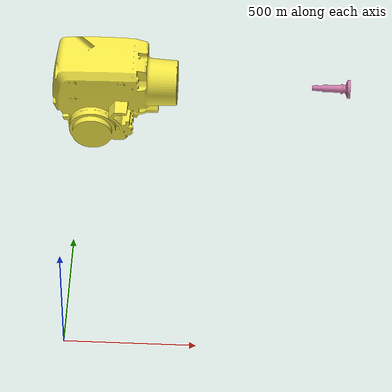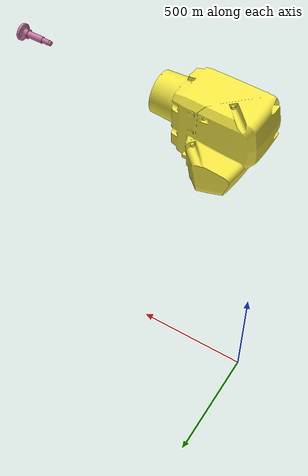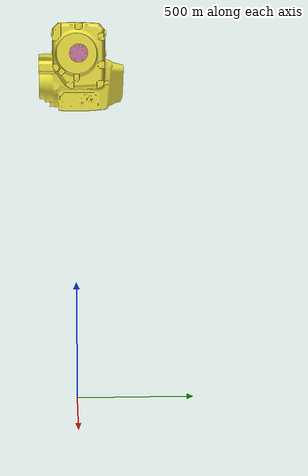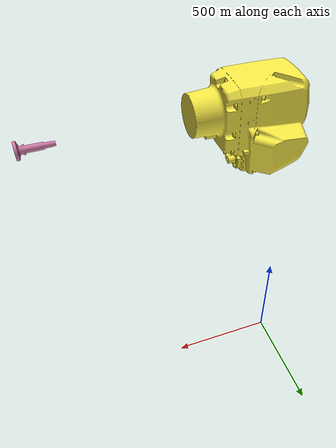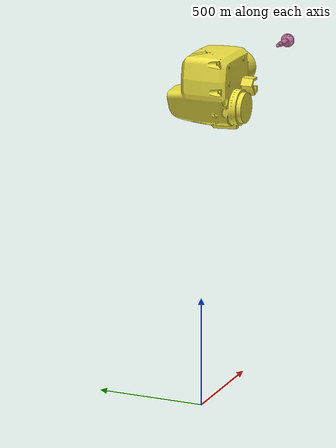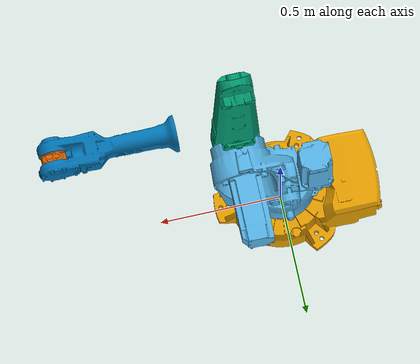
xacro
<?xml version="1.0" ?>
<robot name="abb_irb2600_12_185" xmlns:xacro="http://ros.org/wiki/xacro">
  <xacro:arg name="use_fake_hardware" default="true"/>
  <xacro:property name="use_fake_hardware" value="$(arg use_fake_hardware)"/>
  <xacro:arg name="rws_ip" default="None"/>
  <xacro:property name="rws_ip" value="$(arg rws_ip)"/>
  <xacro:arg name="rws_port" default="80"/>
  <xacro:property name="rws_port" value="$(arg rws_port)"/>
  <!-- Robot description -->
  <xacro:include filename="$(find abb_irb2600_support)/urdf/irb2600_12_185_macro.xacro"/>
  <xacro:abb_irb2600_12_185 prefix=""/>

  <!-- ros2_control -->
  <xacro:include filename="$(find abb_irb2600_support)/urdf/irb2600.ros2_control.xacro" />
  <xacro:abb_ros2_control
    name="ABBMultiInterfaceHardware"
    prefix=""
    use_fake_hardware="${use_fake_hardware}"
    rws_ip="${rws_ip}"
    rws_port="${rws_port}"/>
</robot>

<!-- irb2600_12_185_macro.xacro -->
<robot xmlns:xacro="http://ros.org/wiki/xacro">
  <xacro:include filename="$(find abb_resources)/urdf/common_materials.xacro"/>

  <xacro:macro name="abb_irb2600_12_185" params="prefix">
    <!-- link list -->
    <link name="${prefix}base_link">
      <collision name="collision">
        <geometry>
          <mesh filename="package://abb_irb2600_support/meshes/irb2600_12_185/collision/base_link.stl"/>
        </geometry>
      </collision>
      <visual name="visual">
        <geometry>
          <mesh filename="package://abb_irb2600_support/meshes/irb2600_12_185/visual/base_link.stl"/>
        </geometry>
        <xacro:material_abb_yellow />
      </visual>
    </link>
    <link name="${prefix}link_1">
      <collision name="collision">
        <geometry>
          <mesh filename="package://abb_irb2600_support/meshes/irb2600_12_185/collision/link_1.stl"/>
        </geometry>
      </collision>
      <visual name="visual">
        <geometry>
          <mesh filename="package://abb_irb2600_support/meshes/irb2600_12_185/visual/link_1.stl"/>
        </geometry>
        <xacro:material_abb_yellow />
      </visual>
    </link>
    <link name="${prefix}link_2">
      <collision name="collision">
      	<origin xyz="-0.15 0 -0.445"/>
        <geometry>
          <mesh filename="package://abb_irb2600_support/meshes/irb2600_12_185/collision/link_2.stl"/>
        </geometry>
      </collision>
      <visual name="visual">
      	<origin xyz="-0.15 0 -0.445"/>
        <geometry>
          <mesh filename="package://abb_irb2600_support/meshes/irb2600_12_185/visual/link_2.stl"/>
        </geometry>
        <xacro:material_abb_yellow />
      </visual>
    </link>
    <link name="${prefix}link_3">
      <collision name="collision">
        <geometry>
          <mesh filename="package://abb_irb2600_support/meshes/irb2600_12_185/collision/link_3.stl"/>
        </geometry>
      </collision>
      <visual name="visual">
        <geometry>
          <mesh filename="package://abb_irb2600_support/meshes/irb2600_12_185/visual/link_3.stl"/>
        </geometry>
        <xacro:material_abb_yellow />
      </visual>
    </link>
    <link name="${prefix}link_4">
      <collision name="collision">
        <geometry>
          <mesh filename="package://abb_irb2600_support/meshes/irb2600_12_185/collision/link_4.stl"/>
        </geometry>
      </collision>
      <visual name="visual">
        <geometry>
          <mesh filename="package://abb_irb2600_support/meshes/irb2600_12_185/visual/link_4.stl"/>
        </geometry>
        <xacro:material_abb_yellow />
      </visual>
    </link>
    <link name="${prefix}link_5">
      <collision name="collision">
        <geometry>
          <mesh filename="package://abb_irb2600_support/meshes/irb2600_12_185/collision/link_5.stl"/>
        </geometry>
      </collision>
      <visual name="visual">
        <geometry>
          <mesh filename="package://abb_irb2600_support/meshes/irb2600_12_185/visual/link_5.stl"/>
        </geometry>
        <xacro:material_abb_yellow />
      </visual>
    </link>
    <link name="${prefix}link_6">
      <collision name="collision">
        <geometry>
          <mesh filename="package://abb_irb2600_support/meshes/irb2600_12_185/collision/link_6.stl"/>
        </geometry>
      </collision>
      <visual name="visual">
        <geometry>
          <mesh filename="package://abb_irb2600_support/meshes/irb2600_12_185/visual/link_6.stl"/>
        </geometry>
        <xacro:material_abb_yellow />
      </visual>
    </link>
    <!-- end of link list -->

    <!-- joint list -->
    <joint type="revolute" name="${prefix}joint_1">
      <origin xyz="0 0 0.445" rpy="0 0 0"/>
      <axis xyz="0 0 1"/>
      <parent link="${prefix}base_link"/>
      <child link="${prefix}link_1"/>
      <!-- See note 2 in package.xml about effort limits and dynamics values -->
      <limit lower="-3.14159" upper="3.14159" effort="0" velocity="3.054"/>
      <dynamics damping="50.0" friction="1.0"/>
    </joint>
    <joint type="revolute" name="${prefix}joint_2">
      <origin xyz="0.15 0 0" rpy="0 0 0"/>
      <axis xyz="0 1 0"/>
      <parent link="${prefix}link_1"/>
      <child link="${prefix}link_2"/>
      <!-- See note 2 in package.xml about effort limits and dynamics values -->
      <limit lower="-2.705" upper="1.658" effort="0" velocity="3.054"/>
      <dynamics damping="50.0" friction="1.0"/>
    </joint>
    <joint type="revolute" name="${prefix}joint_3">
      <origin xyz="0 0 0.9" rpy="0 0 0"/>
      <axis xyz="0 1 0"/>
      <parent link="${prefix}link_2"/>
      <child link="${prefix}link_3"/>
      <!-- See note 2 in package.xml about effort limits and dynamics values -->
      <limit lower="-2.705" upper="1.309" effort="0" velocity="3.054"/>
      <dynamics damping="10.0" friction="1.0"/>
    </joint>
    <joint type="revolute" name="${prefix}joint_4">
      <origin xyz="0 0 0.115" rpy="0 0 0"/>
      <axis xyz="1 0 0"/>
      <parent link="${prefix}link_3"/>
      <child link="${prefix}link_4"/>
      <!-- See note 2 in package.xml about effort limits and dynamics values -->
      <limit lower="-6.981" upper="6.981" effort="0" velocity="6.283"/>
      <dynamics damping="5.0" friction="1.0"/>
    </joint>
    <joint type="revolute" name="${prefix}joint_5">
      <origin xyz="0.795 0 0" rpy="0 0 0"/>
      <axis xyz="0 1 0"/>
      <parent link="${prefix}link_4"/>
      <child link="${prefix}link_5"/>
      <!-- See note 2 in package.xml about effort limits and dynamics values -->
      <limit lower="-2.094" upper="2.094" effort="0" velocity="6.283"/>
      <dynamics damping="2.0" friction="1.0"/>
    </joint>
    <joint type="revolute" name="${prefix}joint_6">
      <origin xyz="0.085 0 0" rpy="0 0 0"/>
      <axis xyz="1 0 0"/>
      <parent link="${prefix}link_5"/>
      <child link="${prefix}link_6"/>
      <!-- See note 2 in package.xml about effort limits and dynamics values -->
      <limit lower="-6.981" upper="6.981" effort="0" velocity="8.727"/>
      <dynamics damping="1.0" friction="1.0"/>
    </joint>
    <!-- end of joint list -->

    <!-- ROS-Industrial 'base' frame- base_link to ABB World Coordinates transform -->
    <link name="${prefix}base" />
    <joint name="${prefix}base_link-base" type="fixed">
      <origin xyz="0 0 0" rpy="0 0 0"/>
      <parent link="${prefix}base_link"/>
      <child link="${prefix}base"/>
    </joint>

    <!-- ROS-Industrial 'flange' frame- attachment point for EEF models -->
    <link name="${prefix}flange"/>
    <joint type="fixed" name="${prefix}joint_6-flange">
      <origin xyz="0 0 0" rpy="0 0 0"/>
      <parent link="${prefix}link_6"/>
      <child link="${prefix}flange"/>
    </joint>

    <!-- ROS-Industrial 'tool0' frame- all-zeros tool frame -->
    <link name="${prefix}tool0" />
    <joint name="${prefix}link_6-tool0" type="fixed">
      <origin xyz="0 0 0" rpy="0 ${radians(90)} 0" />
      <parent link="${prefix}flange" />
      <child link="${prefix}tool0" />
    </joint>
  </xacro:macro>
</robot>
